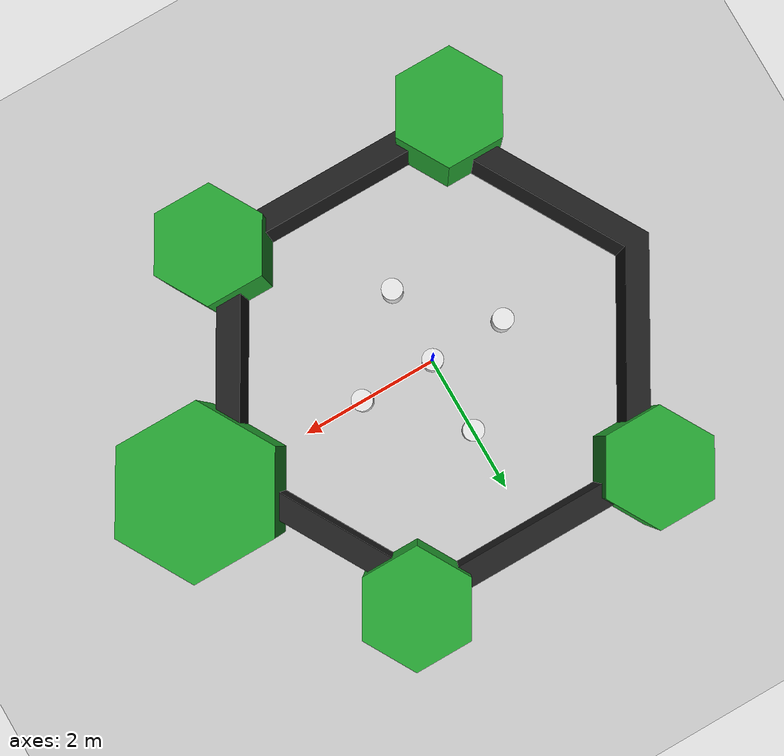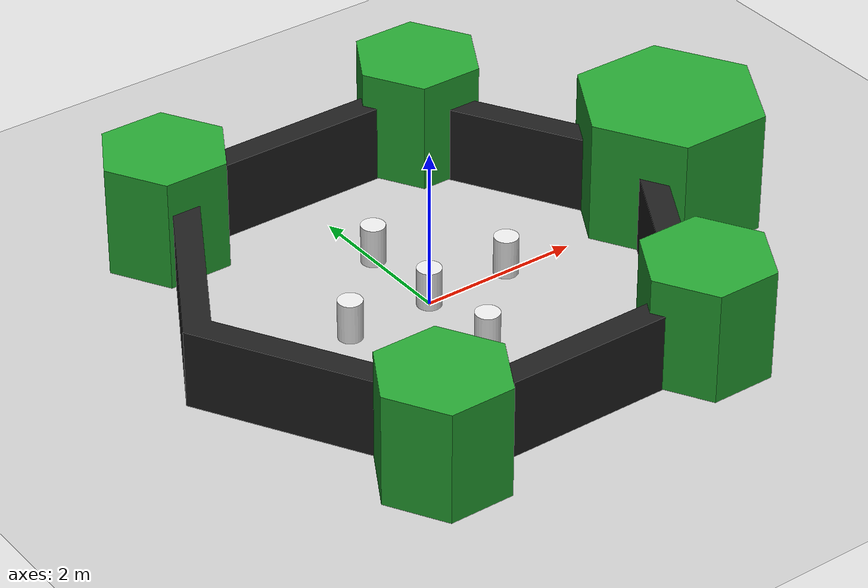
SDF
<sdf version='1.4'>
  <world name='default'>
    <!-- A global light source -->
    <include>
      <uri>model://sun</uri>
    </include>

    <!-- A ground plane -->
    <include>
      <uri>model://ground_plane</uri>
    </include>

    <physics type="ode">
      <real_time_update_rate>1000.0</real_time_update_rate>
      <max_step_size>0.001</max_step_size>
      <real_time_factor>1</real_time_factor>
    </physics>

    <!-- Load world -->
    <include>
      <uri>model://turtlebot3_world</uri>
    </include>

    <scene>
      <ambient>0.4 0.4 0.4 1</ambient>
      <background>0.7 0.7 0.7 1</background>
      <shadows>true</shadows>
    </scene>

    <gui fullscreen='0'>
      <camera name='user_camera'>
        <pose>0.8 0.0 12.0 0 1.5708 0</pose>
        <view_controller>orbit</view_controller>
      </camera>
    </gui>
  </world>
</sdf>

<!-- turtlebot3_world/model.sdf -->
<sdf version='1.5'>
    <!-- Draw Circle -->
    <model name='ros_symbol'>
      <static>1</static>
      <link name='symbol'>

        <collision name='one_two'>
          <pose>-1.1 0 0.25 0 0 0</pose>
          <geometry>
            <cylinder>
              <radius>0.15</radius>
              <length>0.5</length>
            </cylinder>
          </geometry>
          <max_contacts>10</max_contacts>
          <surface>
            <bounce/>
            <friction>
              <ode/>
            </friction>
            <contact>
              <ode/>
            </contact>
          </surface>
        </collision>

        <visual name='one_two'>
          <pose>-1.1 0 0.25 0 0 0</pose>
          <geometry>
            <cylinder>
              <radius>0.15</radius>
              <length>0.5</length>
            </cylinder>
          </geometry>
          <material>
            <script>
              <uri>file://media/materials/scripts/gazebo.material</uri>
              <name>Gazebo/White</name>
            </script>
          </material>
        </visual>

        <collision name='two_one'>
          <pose>0 -1.1 0.25 0 0 0</pose>
          <geometry>
            <cylinder>
              <radius>0.15</radius>
              <length>0.5</length>
            </cylinder>
          </geometry>
          <max_contacts>10</max_contacts>
          <surface>
            <bounce/>
            <friction>
              <ode/>
            </friction>
            <contact>
              <ode/>
            </contact>
          </surface>
        </collision>

        <visual name='two_one'>
          <pose>0 -1.1 0.25 0 0 0</pose>
          <geometry>
            <cylinder>
              <radius>0.15</radius>
              <length>0.5</length>
            </cylinder>
          </geometry>
          <material>
            <script>
              <uri>file://media/materials/scripts/gazebo.material</uri>
              <name>Gazebo/White</name>
            </script>
          </material>
        </visual>

        <collision name='two_two'>
          <pose>0 0 0.25 0 0 0</pose>
          <geometry>
            <cylinder>
              <radius>0.15</radius>
              <length>0.5</length>
            </cylinder>
          </geometry>
          <max_contacts>10</max_contacts>
          <surface>
            <bounce/>
            <friction>
              <ode/>
            </friction>
            <contact>
              <ode/>
            </contact>
          </surface>
        </collision>

        <visual name='two_two'>
          <pose>0 0 0.25 0 0 0</pose>
          <geometry>
            <cylinder>
              <radius>0.15</radius>
              <length>0.5</length>
            </cylinder>
          </geometry>
          <material>
            <script>
              <uri>file://media/materials/scripts/gazebo.material</uri>
              <name>Gazebo/White</name>
            </script>
          </material>
        </visual>

        <collision name='two_three'>
          <pose>0 1.1 0.25 0 0 0</pose>
          <geometry>
            <cylinder>
              <radius>0.15</radius>
              <length>0.5</length>
            </cylinder>
          </geometry>
          <max_contacts>10</max_contacts>
          <surface>
            <bounce/>
            <friction>
              <ode/>
            </friction>
            <contact>
              <ode/>
            </contact>
          </surface>
        </collision>

        <visual name='two_three'>
          <pose>0 1.1 0.25 0 0 0</pose>
          <geometry>
            <cylinder>
              <radius>0.15</radius>
              <length>0.5</length>
            </cylinder>
          </geometry>
          <material>
            <script>
              <uri>file://media/materials/scripts/gazebo.material</uri>
              <name>Gazebo/White</name>
            </script>
          </material>
        </visual>

        <collision name='three_two'>
          <pose>1.1 0 0.25 0 0 0</pose>
          <geometry>
            <cylinder>
              <radius>0.15</radius>
              <length>0.5</length>
            </cylinder>
          </geometry>
          <max_contacts>10</max_contacts>
          <surface>
            <bounce/>
            <friction>
              <ode/>
            </friction>
            <contact>
              <ode/>
            </contact>
          </surface>
        </collision>

        <visual name='three_two'>
          <pose>1.1 0 0.25 0 0 0</pose>
          <geometry>
            <cylinder>
              <radius>0.15</radius>
              <length>0.5</length>
            </cylinder>
          </geometry>
          <material>
            <script>
              <uri>file://media/materials/scripts/gazebo.material</uri>
              <name>Gazebo/White</name>
            </script>
          </material>
        </visual>

        <!-- Draw Hexagon -->
        <collision name='head'>
          <pose>3.5 0 -0.5 0 0 0</pose>
          <geometry>
            <mesh>
              <uri>model://turtlebot3_world/meshes/hexagon.dae</uri>
              <scale>0.8 0.8 0.8</scale>
            </mesh>
          </geometry>
          <max_contacts>10</max_contacts>
          <surface>
            <bounce/>
            <friction>
              <ode/>
            </friction>
            <contact>
              <ode/>
            </contact>
          </surface>
        </collision>

        <visual name='head'>
          <pose>3.5 0 -0.5 0 0 0</pose>
          <geometry>
            <mesh>
              <uri>model://turtlebot3_world/meshes/hexagon.dae</uri>
              <scale>0.8 0.8 0.8</scale>
            </mesh>
          </geometry>
          <material>
            <script>
              <uri>file://media/materials/scripts/gazebo.material</uri>
              <name>Gazebo/Green</name>
            </script>
          </material>
        </visual>

        <collision name='left_hand'>
          <pose>1.8 2.7 0 0 0 0</pose>
          <geometry>
            <mesh>
              <uri>model://turtlebot3_world/meshes/hexagon.dae</uri>
              <scale>0.55 0.55 0.55</scale>
            </mesh>
          </geometry>
          <max_contacts>10</max_contacts>
          <surface>
            <bounce/>
            <friction>
              <ode/>
            </friction>
            <contact>
              <ode/>
            </contact>
          </surface>
        </collision>

        <visual name='left_hand'>
          <pose>1.8 2.7 0 0 0 0</pose>
          <geometry>
            <mesh>
              <uri>model://turtlebot3_world/meshes/hexagon.dae</uri>
              <scale>0.55 0.55 0.55</scale>
            </mesh>
          </geometry>
          <material>
            <script>
              <uri>file://media/materials/scripts/gazebo.material</uri>
              <name>Gazebo/Green</name>
            </script>
          </material>
        </visual>

        <collision name='right_hand'>
          <pose>1.8 -2.7 0 0 0 0</pose>
          <geometry>
            <mesh>
              <uri>model://turtlebot3_world/meshes/hexagon.dae</uri>
              <scale>0.55 0.55 0.55</scale>
            </mesh>
          </geometry>
          <max_contacts>10</max_contacts>
          <surface>
            <bounce/>
            <friction>
              <ode/>
            </friction>
            <contact>
              <ode/>
            </contact>
          </surface>
        </collision>

        <visual name='right_hand'>
          <pose>1.8 -2.7 0 0 0 0</pose>
          <geometry>
            <mesh>
              <uri>model://turtlebot3_world/meshes/hexagon.dae</uri>
              <scale>0.55 0.55 0.55</scale>
            </mesh>
          </geometry>
          <material>
            <script>
              <uri>file://media/materials/scripts/gazebo.material</uri>
              <name>Gazebo/Green</name>
            </script>
          </material>
        </visual>

        <collision name='left_foot'>
          <pose>-1.8 2.7 0 0 0 0</pose>
          <geometry>
            <mesh>
              <uri>model://turtlebot3_world/meshes/hexagon.dae</uri>
              <scale>0.55 0.55 0.55</scale>
            </mesh>
          </geometry>
          <max_contacts>10</max_contacts>
          <surface>
            <bounce/>
            <friction>
              <ode/>
            </friction>
            <contact>
              <ode/>
            </contact>
          </surface>
        </collision>

        <visual name='left_foot'>
          <pose>-1.8 2.7 0 0 0 0</pose>
          <geometry>
            <mesh>
              <uri>model://turtlebot3_world/meshes/hexagon.dae</uri>
              <scale>0.55 0.55 0.55</scale>
            </mesh>
          </geometry>
          <material>
            <script>
              <uri>file://media/materials/scripts/gazebo.material</uri>
              <name>Gazebo/Green</name>
            </script>
          </material>
        </visual>

        <collision name='right_foot'>
          <pose>-1.8 -2.7 0 0 0 0</pose>
          <geometry>
            <mesh>
              <uri>model://turtlebot3_world/meshes/hexagon.dae</uri>
              <scale>0.55 0.55 0.55</scale>
            </mesh>
          </geometry>
          <max_contacts>10</max_contacts>
          <surface>
            <bounce/>
            <friction>
              <ode/>
            </friction>
            <contact>
              <ode/>
            </contact>
          </surface>
        </collision>

        <visual name='right_foot'>
          <pose>-1.8 -2.7 0 0 0 0</pose>
          <geometry>
            <mesh>
              <uri>model://turtlebot3_world/meshes/hexagon.dae</uri>
              <scale>0.55 0.55 0.55</scale>
            </mesh>
          </geometry>
          <material>
            <script>
              <uri>file://media/materials/scripts/gazebo.material</uri>
              <name>Gazebo/Green</name>
            </script>
          </material>
        </visual>

        <!-- Draw Wall -->
        <collision name='body'>
        <pose>0 0 -0.3 0 0 -1.5708</pose>
        <geometry>
          <mesh>
            <uri>model://turtlebot3_world/meshes/wall.dae</uri>
            <scale>0.25 0.25 0.25</scale>
          </mesh>
        </geometry>
        <max_contacts>10</max_contacts>
        <surface>
          <bounce/>
          <friction>
            <ode/>
          </friction>
          <contact>
            <ode/>
          </contact>
        </surface>
      </collision>

      <visual name='body'>
        <pose>0 0 -0.3 0 0 -1.5708</pose>
        <geometry>
          <mesh>
            <uri>model://turtlebot3_world/meshes/wall.dae</uri>
            <scale>0.25 0.25 0.25</scale>
          </mesh>
        </geometry>
        <material>
          <script>
            <uri>file://media/materials/scripts/gazebo.material</uri>
            <name>Gazebo/FlatBlack</name>
          </script>
        </material>
      </visual>
    </link>
  </model>
</sdf>
